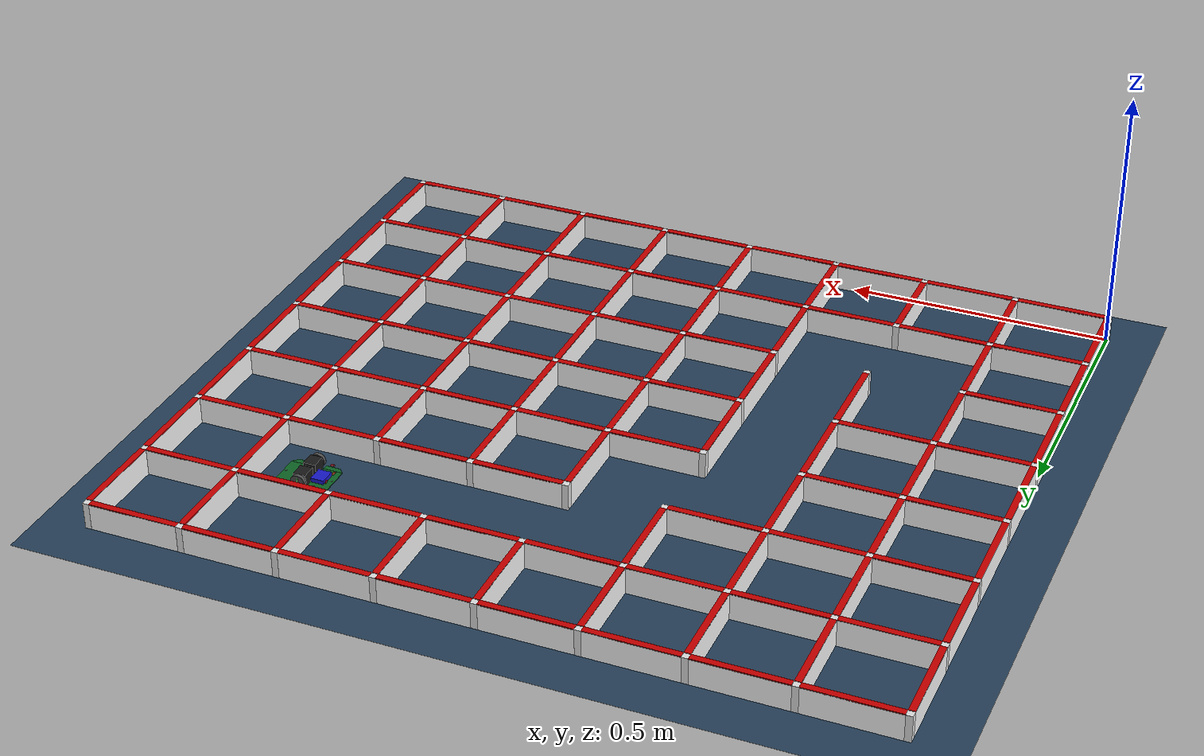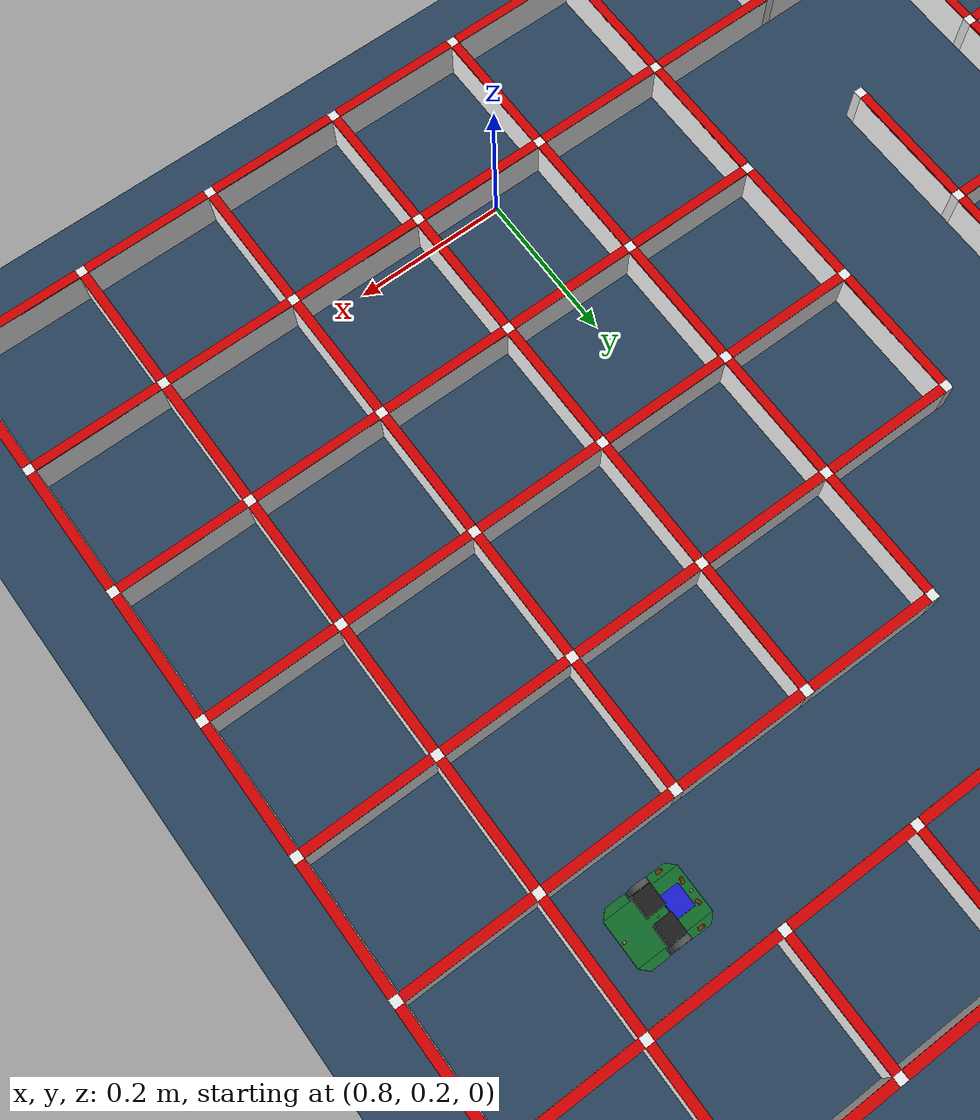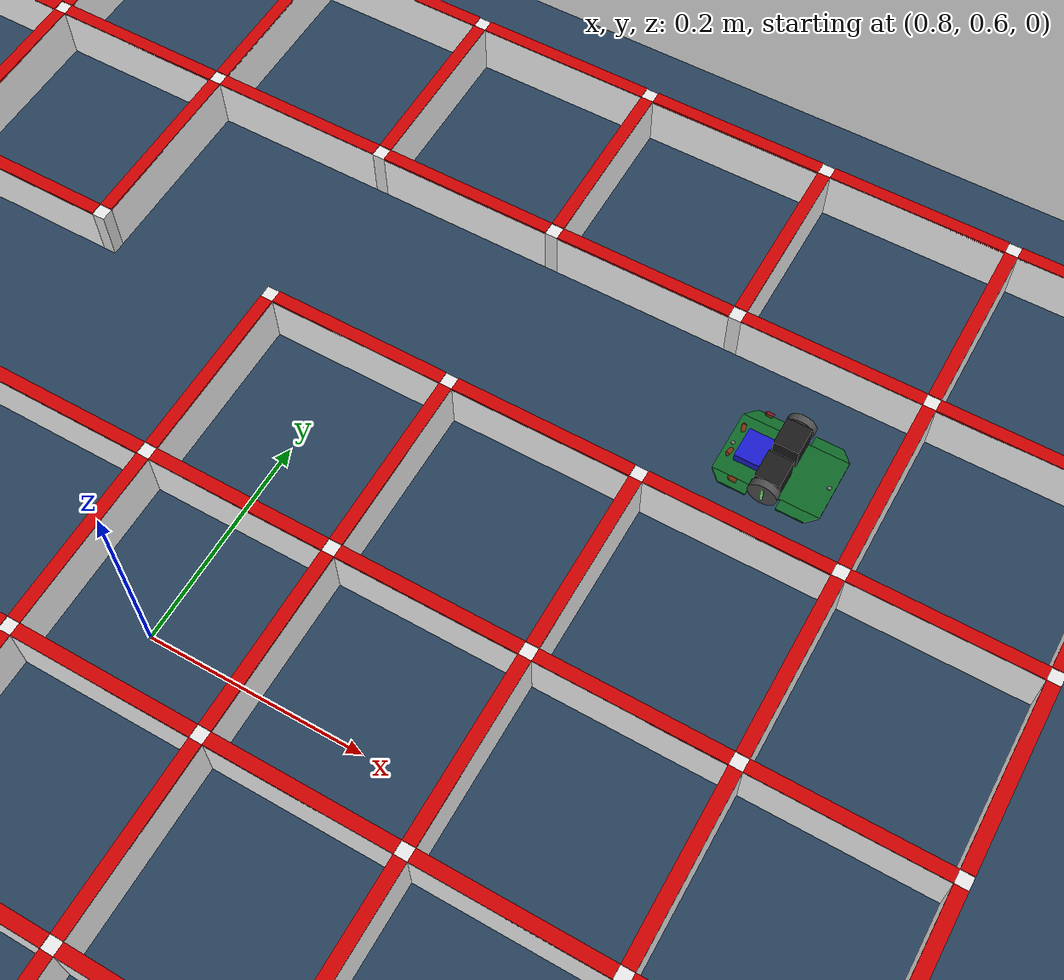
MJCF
<?xml version="1.0" ?>
<mujoco model="corridor_3001">
  <compiler angle="degree" coordinate="local" inertiafromgeom="true"/>
  <option timestep="0.0005" gravity="0 0 -9.81"/>
  <default>
    <geom solref="0.002 1"/>
  </default>
  <visual>
    <global offwidth="800" offheight="800"/>
  </visual>
  <asset>
    <texture name="tex_floor" type="2d" builtin="checker" rgb1=".2 .3 .4" rgb2=".1 .2 .3" width="512" height="512"/>
    <material name="mat_floor" texture="tex_floor" reflectance="0.0" texrepeat="50 50"/>
    <material name="mat_wall" rgba="1 1 1 1"/>
    <material name="mat_wall_top" rgba="0.8 0 0 1"/>
    <material name="mat_post" rgba="0.9 0.9 0.9 1"/>
    <material name="mat_pcb" rgba="0.1 0.1 0.1 1" specular="0.5" shininess="0.5"/>
    <material name="mat_tire" rgba="0.1 0.1 0.1 1" reflectance="0.1"/>
    <material name="mat_wheel" rgba="0.9 0.9 0.9 1"/>
    <material name="mat_motor" rgba="0.6 0.6 0.6 1" specular="1" shininess="1"/>
    <material name="mat_battery" rgba="0.1 0.1 0.8 1"/>
    <material name="mat_sensor_body" rgba="0.2 0.2 0.2 1"/>
    <material name="mat_led" rgba="0.9 0.9 0.9 0.5"/>
    <mesh name="coner" vertex="0 0 -0.0008  0.036 0 -0.0008  0.026 0.01 -0.0008  0 0.01 -0.0008  0 0 0.0008  0.036 0 0.0008  0.026 0.01 0.0008  0 0.01 0.0008"/>
  </asset>
  <worldbody>
    <geom name="floor" type="plane" material="mat_floor" pos="0.72 0.63 0" size="1.0 0.875 0.1" friction="1.0 0.005 1e-4"/>
    <light diffuse=".5 .5 .5" pos="0.72 0.63 3" dir="0 0 -1"/>
    <geom name="post_0_0" type="box" size="0.006 0.006 0.025" pos="0.0 0.0 0.025" material="mat_post" friction="0.4 0.005 1e-4"/>
    <geom name="post_0_1" type="box" size="0.006 0.006 0.025" pos="0.0 0.18 0.025" material="mat_post" friction="0.4 0.005 1e-4"/>
    <geom name="post_0_2" type="box" size="0.006 0.006 0.025" pos="0.0 0.36 0.025" material="mat_post" friction="0.4 0.005 1e-4"/>
    <geom name="post_0_3" type="box" size="0.006 0.006 0.025" pos="0.0 0.54 0.025" material="mat_post" friction="0.4 0.005 1e-4"/>
    <geom name="post_0_4" type="box" size="0.006 0.006 0.025" pos="0.0 0.72 0.025" material="mat_post" friction="0.4 0.005 1e-4"/>
    <geom name="post_0_5" type="box" size="0.006 0.006 0.025" pos="0.0 0.8999999999999999 0.025" material="mat_post" friction="0.4 0.005 1e-4"/>
    <geom name="post_0_6" type="box" size="0.006 0.006 0.025" pos="0.0 1.08 0.025" material="mat_post" friction="0.4 0.005 1e-4"/>
    <geom name="post_0_7" type="box" size="0.006 0.006 0.025" pos="0.0 1.26 0.025" material="mat_post" friction="0.4 0.005 1e-4"/>
    <geom name="post_1_0" type="box" size="0.006 0.006 0.025" pos="0.18 0.0 0.025" material="mat_post" friction="0.4 0.005 1e-4"/>
    <geom name="post_1_1" type="box" size="0.006 0.006 0.025" pos="0.18 0.18 0.025" material="mat_post" friction="0.4 0.005 1e-4"/>
    <geom name="post_1_2" type="box" size="0.006 0.006 0.025" pos="0.18 0.36 0.025" material="mat_post" friction="0.4 0.005 1e-4"/>
    <geom name="post_1_3" type="box" size="0.006 0.006 0.025" pos="0.18 0.54 0.025" material="mat_post" friction="0.4 0.005 1e-4"/>
    <geom name="post_1_4" type="box" size="0.006 0.006 0.025" pos="0.18 0.72 0.025" material="mat_post" friction="0.4 0.005 1e-4"/>
    <geom name="post_1_5" type="box" size="0.006 0.006 0.025" pos="0.18 0.8999999999999999 0.025" material="mat_post" friction="0.4 0.005 1e-4"/>
    <geom name="post_1_6" type="box" size="0.006 0.006 0.025" pos="0.18 1.08 0.025" material="mat_post" friction="0.4 0.005 1e-4"/>
    <geom name="post_1_7" type="box" size="0.006 0.006 0.025" pos="0.18 1.26 0.025" material="mat_post" friction="0.4 0.005 1e-4"/>
    <geom name="post_2_0" type="box" size="0.006 0.006 0.025" pos="0.36 0.0 0.025" material="mat_post" friction="0.4 0.005 1e-4"/>
    <geom name="post_2_1" type="box" size="0.006 0.006 0.025" pos="0.36 0.18 0.025" material="mat_post" friction="0.4 0.005 1e-4"/>
    <geom name="post_2_2" type="box" size="0.006 0.006 0.025" pos="0.36 0.36 0.025" material="mat_post" friction="0.4 0.005 1e-4"/>
    <geom name="post_2_3" type="box" size="0.006 0.006 0.025" pos="0.36 0.54 0.025" material="mat_post" friction="0.4 0.005 1e-4"/>
    <geom name="post_2_4" type="box" size="0.006 0.006 0.025" pos="0.36 0.72 0.025" material="mat_post" friction="0.4 0.005 1e-4"/>
    <geom name="post_2_5" type="box" size="0.006 0.006 0.025" pos="0.36 0.8999999999999999 0.025" material="mat_post" friction="0.4 0.005 1e-4"/>
    <geom name="post_2_6" type="box" size="0.006 0.006 0.025" pos="0.36 1.08 0.025" material="mat_post" friction="0.4 0.005 1e-4"/>
    <geom name="post_2_7" type="box" size="0.006 0.006 0.025" pos="0.36 1.26 0.025" material="mat_post" friction="0.4 0.005 1e-4"/>
    <geom name="post_3_0" type="box" size="0.006 0.006 0.025" pos="0.54 0.0 0.025" material="mat_post" friction="0.4 0.005 1e-4"/>
    <geom name="post_3_1" type="box" size="0.006 0.006 0.025" pos="0.54 0.18 0.025" material="mat_post" friction="0.4 0.005 1e-4"/>
    <geom name="post_3_2" type="box" size="0.006 0.006 0.025" pos="0.54 0.36 0.025" material="mat_post" friction="0.4 0.005 1e-4"/>
    <geom name="post_3_3" type="box" size="0.006 0.006 0.025" pos="0.54 0.54 0.025" material="mat_post" friction="0.4 0.005 1e-4"/>
    <geom name="post_3_4" type="box" size="0.006 0.006 0.025" pos="0.54 0.72 0.025" material="mat_post" friction="0.4 0.005 1e-4"/>
    <geom name="post_3_5" type="box" size="0.006 0.006 0.025" pos="0.54 0.8999999999999999 0.025" material="mat_post" friction="0.4 0.005 1e-4"/>
    <geom name="post_3_6" type="box" size="0.006 0.006 0.025" pos="0.54 1.08 0.025" material="mat_post" friction="0.4 0.005 1e-4"/>
    <geom name="post_3_7" type="box" size="0.006 0.006 0.025" pos="0.54 1.26 0.025" material="mat_post" friction="0.4 0.005 1e-4"/>
    <geom name="post_4_0" type="box" size="0.006 0.006 0.025" pos="0.72 0.0 0.025" material="mat_post" friction="0.4 0.005 1e-4"/>
    <geom name="post_4_1" type="box" size="0.006 0.006 0.025" pos="0.72 0.18 0.025" material="mat_post" friction="0.4 0.005 1e-4"/>
    <geom name="post_4_2" type="box" size="0.006 0.006 0.025" pos="0.72 0.36 0.025" material="mat_post" friction="0.4 0.005 1e-4"/>
    <geom name="post_4_3" type="box" size="0.006 0.006 0.025" pos="0.72 0.54 0.025" material="mat_post" friction="0.4 0.005 1e-4"/>
    <geom name="post_4_4" type="box" size="0.006 0.006 0.025" pos="0.72 0.72 0.025" material="mat_post" friction="0.4 0.005 1e-4"/>
    <geom name="post_4_5" type="box" size="0.006 0.006 0.025" pos="0.72 0.8999999999999999 0.025" material="mat_post" friction="0.4 0.005 1e-4"/>
    <geom name="post_4_6" type="box" size="0.006 0.006 0.025" pos="0.72 1.08 0.025" material="mat_post" friction="0.4 0.005 1e-4"/>
    <geom name="post_4_7" type="box" size="0.006 0.006 0.025" pos="0.72 1.26 0.025" material="mat_post" friction="0.4 0.005 1e-4"/>
    <geom name="post_5_0" type="box" size="0.006 0.006 0.025" pos="0.8999999999999999 0.0 0.025" material="mat_post" friction="0.4 0.005 1e-4"/>
    <geom name="post_5_1" type="box" size="0.006 0.006 0.025" pos="0.8999999999999999 0.18 0.025" material="mat_post" friction="0.4 0.005 1e-4"/>
    <geom name="post_5_2" type="box" size="0.006 0.006 0.025" pos="0.8999999999999999 0.36 0.025" material="mat_post" friction="0.4 0.005 1e-4"/>
    <geom name="post_5_3" type="box" size="0.006 0.006 0.025" pos="0.8999999999999999 0.54 0.025" material="mat_post" friction="0.4 0.005 1e-4"/>
    <geom name="post_5_4" type="box" size="0.006 0.006 0.025" pos="0.8999999999999999 0.72 0.025" material="mat_post" friction="0.4 0.005 1e-4"/>
    <geom name="post_5_5" type="box" size="0.006 0.006 0.025" pos="0.8999999999999999 0.8999999999999999 0.025" material="mat_post" friction="0.4 0.005 1e-4"/>
    <geom name="post_5_6" type="box" size="0.006 0.006 0.025" pos="0.8999999999999999 1.08 0.025" material="mat_post" friction="0.4 0.005 1e-4"/>
    <geom name="post_5_7" type="box" size="0.006 0.006 0.025" pos="0.8999999999999999 1.26 0.025" material="mat_post" friction="0.4 0.005 1e-4"/>
    <geom name="post_6_0" type="box" size="0.006 0.006 0.025" pos="1.08 0.0 0.025" material="mat_post" friction="0.4 0.005 1e-4"/>
    <geom name="post_6_1" type="box" size="0.006 0.006 0.025" pos="1.08 0.18 0.025" material="mat_post" friction="0.4 0.005 1e-4"/>
    <geom name="post_6_2" type="box" size="0.006 0.006 0.025" pos="1.08 0.36 0.025" material="mat_post" friction="0.4 0.005 1e-4"/>
    <geom name="post_6_3" type="box" size="0.006 0.006 0.025" pos="1.08 0.54 0.025" material="mat_post" friction="0.4 0.005 1e-4"/>
    <geom name="post_6_4" type="box" size="0.006 0.006 0.025" pos="1.08 0.72 0.025" material="mat_post" friction="0.4 0.005 1e-4"/>
    <geom name="post_6_5" type="box" size="0.006 0.006 0.025" pos="1.08 0.8999999999999999 0.025" material="mat_post" friction="0.4 0.005 1e-4"/>
    <geom name="post_6_6" type="box" size="0.006 0.006 0.025" pos="1.08 1.08 0.025" material="mat_post" friction="0.4 0.005 1e-4"/>
    <geom name="post_6_7" type="box" size="0.006 0.006 0.025" pos="1.08 1.26 0.025" material="mat_post" friction="0.4 0.005 1e-4"/>
    <geom name="post_7_0" type="box" size="0.006 0.006 0.025" pos="1.26 0.0 0.025" material="mat_post" friction="0.4 0.005 1e-4"/>
    <geom name="post_7_1" type="box" size="0.006 0.006 0.025" pos="1.26 0.18 0.025" material="mat_post" friction="0.4 0.005 1e-4"/>
    <geom name="post_7_2" type="box" size="0.006 0.006 0.025" pos="1.26 0.36 0.025" material="mat_post" friction="0.4 0.005 1e-4"/>
    <geom name="post_7_3" type="box" size="0.006 0.006 0.025" pos="1.26 0.54 0.025" material="mat_post" friction="0.4 0.005 1e-4"/>
    <geom name="post_7_4" type="box" size="0.006 0.006 0.025" pos="1.26 0.72 0.025" material="mat_post" friction="0.4 0.005 1e-4"/>
    <geom name="post_7_5" type="box" size="0.006 0.006 0.025" pos="1.26 0.8999999999999999 0.025" material="mat_post" friction="0.4 0.005 1e-4"/>
    <geom name="post_7_6" type="box" size="0.006 0.006 0.025" pos="1.26 1.08 0.025" material="mat_post" friction="0.4 0.005 1e-4"/>
    <geom name="post_7_7" type="box" size="0.006 0.006 0.025" pos="1.26 1.26 0.025" material="mat_post" friction="0.4 0.005 1e-4"/>
    <geom name="post_8_0" type="box" size="0.006 0.006 0.025" pos="1.44 0.0 0.025" material="mat_post" friction="0.4 0.005 1e-4"/>
    <geom name="post_8_1" type="box" size="0.006 0.006 0.025" pos="1.44 0.18 0.025" material="mat_post" friction="0.4 0.005 1e-4"/>
    <geom name="post_8_2" type="box" size="0.006 0.006 0.025" pos="1.44 0.36 0.025" material="mat_post" friction="0.4 0.005 1e-4"/>
    <geom name="post_8_3" type="box" size="0.006 0.006 0.025" pos="1.44 0.54 0.025" material="mat_post" friction="0.4 0.005 1e-4"/>
    <geom name="post_8_4" type="box" size="0.006 0.006 0.025" pos="1.44 0.72 0.025" material="mat_post" friction="0.4 0.005 1e-4"/>
    <geom name="post_8_5" type="box" size="0.006 0.006 0.025" pos="1.44 0.8999999999999999 0.025" material="mat_post" friction="0.4 0.005 1e-4"/>
    <geom name="post_8_6" type="box" size="0.006 0.006 0.025" pos="1.44 1.08 0.025" material="mat_post" friction="0.4 0.005 1e-4"/>
    <geom name="post_8_7" type="box" size="0.006 0.006 0.025" pos="1.44 1.26 0.025" material="mat_post" friction="0.4 0.005 1e-4"/>
    <geom name="v_wall_0_0" type="box" size="0.006 0.08399999999999999 0.025" pos="0.0 0.09 0.025" material="mat_wall" friction="0.4 0.005 1e-4"/>
    <geom name="v_wall_top_0_0" type="box" size="0.006 0.08399999999999999 0.001" pos="0.0 0.09 0.05" material="mat_wall_top" friction="0.4 0.005 1e-4"/>
    <geom name="v_wall_0_1" type="box" size="0.006 0.08399999999999999 0.025" pos="0.0 0.27 0.025" material="mat_wall" friction="0.4 0.005 1e-4"/>
    <geom name="v_wall_top_0_1" type="box" size="0.006 0.08399999999999999 0.001" pos="0.0 0.27 0.05" material="mat_wall_top" friction="0.4 0.005 1e-4"/>
    <geom name="v_wall_0_2" type="box" size="0.006 0.08399999999999999 0.025" pos="0.0 0.44999999999999996 0.025" material="mat_wall" friction="0.4 0.005 1e-4"/>
    <geom name="v_wall_top_0_2" type="box" size="0.006 0.08399999999999999 0.001" pos="0.0 0.44999999999999996 0.05" material="mat_wall_top" friction="0.4 0.005 1e-4"/>
    <geom name="v_wall_0_3" type="box" size="0.006 0.08399999999999999 0.025" pos="0.0 0.63 0.025" material="mat_wall" friction="0.4 0.005 1e-4"/>
    <geom name="v_wall_top_0_3" type="box" size="0.006 0.08399999999999999 0.001" pos="0.0 0.63 0.05" material="mat_wall_top" friction="0.4 0.005 1e-4"/>
    <geom name="v_wall_0_4" type="box" size="0.006 0.08399999999999999 0.025" pos="0.0 0.8099999999999999 0.025" material="mat_wall" friction="0.4 0.005 1e-4"/>
    <geom name="v_wall_top_0_4" type="box" size="0.006 0.08399999999999999 0.001" pos="0.0 0.8099999999999999 0.05" material="mat_wall_top" friction="0.4 0.005 1e-4"/>
    <geom name="v_wall_0_5" type="box" size="0.006 0.08399999999999999 0.025" pos="0.0 0.9899999999999999 0.025" material="mat_wall" friction="0.4 0.005 1e-4"/>
    <geom name="v_wall_top_0_5" type="box" size="0.006 0.08399999999999999 0.001" pos="0.0 0.9899999999999999 0.05" material="mat_wall_top" friction="0.4 0.005 1e-4"/>
    <geom name="v_wall_0_6" type="box" size="0.006 0.08399999999999999 0.025" pos="0.0 1.1700000000000002 0.025" material="mat_wall" friction="0.4 0.005 1e-4"/>
    <geom name="v_wall_top_0_6" type="box" size="0.006 0.08399999999999999 0.001" pos="0.0 1.1700000000000002 0.05" material="mat_wall_top" friction="0.4 0.005 1e-4"/>
    <geom name="v_wall_1_0" type="box" size="0.006 0.08399999999999999 0.025" pos="0.18 0.09 0.025" material="mat_wall" friction="0.4 0.005 1e-4"/>
    <geom name="v_wall_top_1_0" type="box" size="0.006 0.08399999999999999 0.001" pos="0.18 0.09 0.05" material="mat_wall_top" friction="0.4 0.005 1e-4"/>
    <geom name="v_wall_1_1" type="box" size="0.006 0.08399999999999999 0.025" pos="0.18 0.27 0.025" material="mat_wall" friction="0.4 0.005 1e-4"/>
    <geom name="v_wall_top_1_1" type="box" size="0.006 0.08399999999999999 0.001" pos="0.18 0.27 0.05" material="mat_wall_top" friction="0.4 0.005 1e-4"/>
    <geom name="v_wall_1_2" type="box" size="0.006 0.08399999999999999 0.025" pos="0.18 0.44999999999999996 0.025" material="mat_wall" friction="0.4 0.005 1e-4"/>
    <geom name="v_wall_top_1_2" type="box" size="0.006 0.08399999999999999 0.001" pos="0.18 0.44999999999999996 0.05" material="mat_wall_top" friction="0.4 0.005 1e-4"/>
    <geom name="v_wall_1_3" type="box" size="0.006 0.08399999999999999 0.025" pos="0.18 0.63 0.025" material="mat_wall" friction="0.4 0.005 1e-4"/>
    <geom name="v_wall_top_1_3" type="box" size="0.006 0.08399999999999999 0.001" pos="0.18 0.63 0.05" material="mat_wall_top" friction="0.4 0.005 1e-4"/>
    <geom name="v_wall_1_4" type="box" size="0.006 0.08399999999999999 0.025" pos="0.18 0.8099999999999999 0.025" material="mat_wall" friction="0.4 0.005 1e-4"/>
    <geom name="v_wall_top_1_4" type="box" size="0.006 0.08399999999999999 0.001" pos="0.18 0.8099999999999999 0.05" material="mat_wall_top" friction="0.4 0.005 1e-4"/>
    <geom name="v_wall_1_5" type="box" size="0.006 0.08399999999999999 0.025" pos="0.18 0.9899999999999999 0.025" material="mat_wall" friction="0.4 0.005 1e-4"/>
    <geom name="v_wall_top_1_5" type="box" size="0.006 0.08399999999999999 0.001" pos="0.18 0.9899999999999999 0.05" material="mat_wall_top" friction="0.4 0.005 1e-4"/>
    <geom name="v_wall_1_6" type="box" size="0.006 0.08399999999999999 0.025" pos="0.18 1.1700000000000002 0.025" material="mat_wall" friction="0.4 0.005 1e-4"/>
    <geom name="v_wall_top_1_6" type="box" size="0.006 0.08399999999999999 0.001" pos="0.18 1.1700000000000002 0.05" material="mat_wall_top" friction="0.4 0.005 1e-4"/>
    <geom name="v_wall_2_0" type="box" size="0.006 0.08399999999999999 0.025" pos="0.36 0.09 0.025" material="mat_wall" friction="0.4 0.005 1e-4"/>
    <geom name="v_wall_top_2_0" type="box" size="0.006 0.08399999999999999 0.001" pos="0.36 0.09 0.05" material="mat_wall_top" friction="0.4 0.005 1e-4"/>
    <geom name="v_wall_2_2" type="box" size="0.006 0.08399999999999999 0.025" pos="0.36 0.44999999999999996 0.025" material="mat_wall" friction="0.4 0.005 1e-4"/>
    <geom name="v_wall_top_2_2" type="box" size="0.006 0.08399999999999999 0.001" pos="0.36 0.44999999999999996 0.05" material="mat_wall_top" friction="0.4 0.005 1e-4"/>
    <geom name="v_wall_2_3" type="box" size="0.006 0.08399999999999999 0.025" pos="0.36 0.63 0.025" material="mat_wall" friction="0.4 0.005 1e-4"/>
    <geom name="v_wall_top_2_3" type="box" size="0.006 0.08399999999999999 0.001" pos="0.36 0.63 0.05" material="mat_wall_top" friction="0.4 0.005 1e-4"/>
    <geom name="v_wall_2_4" type="box" size="0.006 0.08399999999999999 0.025" pos="0.36 0.8099999999999999 0.025" material="mat_wall" friction="0.4 0.005 1e-4"/>
    <geom name="v_wall_top_2_4" type="box" size="0.006 0.08399999999999999 0.001" pos="0.36 0.8099999999999999 0.05" material="mat_wall_top" friction="0.4 0.005 1e-4"/>
    <geom name="v_wall_2_5" type="box" size="0.006 0.08399999999999999 0.025" pos="0.36 0.9899999999999999 0.025" material="mat_wall" friction="0.4 0.005 1e-4"/>
    <geom name="v_wall_top_2_5" type="box" size="0.006 0.08399999999999999 0.001" pos="0.36 0.9899999999999999 0.05" material="mat_wall_top" friction="0.4 0.005 1e-4"/>
    <geom name="v_wall_2_6" type="box" size="0.006 0.08399999999999999 0.025" pos="0.36 1.1700000000000002 0.025" material="mat_wall" friction="0.4 0.005 1e-4"/>
    <geom name="v_wall_top_2_6" type="box" size="0.006 0.08399999999999999 0.001" pos="0.36 1.1700000000000002 0.05" material="mat_wall_top" friction="0.4 0.005 1e-4"/>
    <geom name="v_wall_3_0" type="box" size="0.006 0.08399999999999999 0.025" pos="0.54 0.09 0.025" material="mat_wall" friction="0.4 0.005 1e-4"/>
    <geom name="v_wall_top_3_0" type="box" size="0.006 0.08399999999999999 0.001" pos="0.54 0.09 0.05" material="mat_wall_top" friction="0.4 0.005 1e-4"/>
    <geom name="v_wall_3_1" type="box" size="0.006 0.08399999999999999 0.025" pos="0.54 0.27 0.025" material="mat_wall" friction="0.4 0.005 1e-4"/>
    <geom name="v_wall_top_3_1" type="box" size="0.006 0.08399999999999999 0.001" pos="0.54 0.27 0.05" material="mat_wall_top" friction="0.4 0.005 1e-4"/>
    <geom name="v_wall_3_2" type="box" size="0.006 0.08399999999999999 0.025" pos="0.54 0.44999999999999996 0.025" material="mat_wall" friction="0.4 0.005 1e-4"/>
    <geom name="v_wall_top_3_2" type="box" size="0.006 0.08399999999999999 0.001" pos="0.54 0.44999999999999996 0.05" material="mat_wall_top" friction="0.4 0.005 1e-4"/>
    <geom name="v_wall_3_3" type="box" size="0.006 0.08399999999999999 0.025" pos="0.54 0.63 0.025" material="mat_wall" friction="0.4 0.005 1e-4"/>
    <geom name="v_wall_top_3_3" type="box" size="0.006 0.08399999999999999 0.001" pos="0.54 0.63 0.05" material="mat_wall_top" friction="0.4 0.005 1e-4"/>
    <geom name="v_wall_3_5" type="box" size="0.006 0.08399999999999999 0.025" pos="0.54 0.9899999999999999 0.025" material="mat_wall" friction="0.4 0.005 1e-4"/>
    <geom name="v_wall_top_3_5" type="box" size="0.006 0.08399999999999999 0.001" pos="0.54 0.9899999999999999 0.05" material="mat_wall_top" friction="0.4 0.005 1e-4"/>
    <geom name="v_wall_3_6" type="box" size="0.006 0.08399999999999999 0.025" pos="0.54 1.1700000000000002 0.025" material="mat_wall" friction="0.4 0.005 1e-4"/>
    <geom name="v_wall_top_3_6" type="box" size="0.006 0.08399999999999999 0.001" pos="0.54 1.1700000000000002 0.05" material="mat_wall_top" friction="0.4 0.005 1e-4"/>
    <geom name="v_wall_4_0" type="box" size="0.006 0.08399999999999999 0.025" pos="0.72 0.09 0.025" material="mat_wall" friction="0.4 0.005 1e-4"/>
    <geom name="v_wall_top_4_0" type="box" size="0.006 0.08399999999999999 0.001" pos="0.72 0.09 0.05" material="mat_wall_top" friction="0.4 0.005 1e-4"/>
    <geom name="v_wall_4_1" type="box" size="0.006 0.08399999999999999 0.025" pos="0.72 0.27 0.025" material="mat_wall" friction="0.4 0.005 1e-4"/>
    <geom name="v_wall_top_4_1" type="box" size="0.006 0.08399999999999999 0.001" pos="0.72 0.27 0.05" material="mat_wall_top" friction="0.4 0.005 1e-4"/>
    <geom name="v_wall_4_2" type="box" size="0.006 0.08399999999999999 0.025" pos="0.72 0.44999999999999996 0.025" material="mat_wall" friction="0.4 0.005 1e-4"/>
    <geom name="v_wall_top_4_2" type="box" size="0.006 0.08399999999999999 0.001" pos="0.72 0.44999999999999996 0.05" material="mat_wall_top" friction="0.4 0.005 1e-4"/>
    <geom name="v_wall_4_3" type="box" size="0.006 0.08399999999999999 0.025" pos="0.72 0.63 0.025" material="mat_wall" friction="0.4 0.005 1e-4"/>
    <geom name="v_wall_top_4_3" type="box" size="0.006 0.08399999999999999 0.001" pos="0.72 0.63 0.05" material="mat_wall_top" friction="0.4 0.005 1e-4"/>
    <geom name="v_wall_4_4" type="box" size="0.006 0.08399999999999999 0.025" pos="0.72 0.8099999999999999 0.025" material="mat_wall" friction="0.4 0.005 1e-4"/>
    <geom name="v_wall_top_4_4" type="box" size="0.006 0.08399999999999999 0.001" pos="0.72 0.8099999999999999 0.05" material="mat_wall_top" friction="0.4 0.005 1e-4"/>
    <geom name="v_wall_4_6" type="box" size="0.006 0.08399999999999999 0.025" pos="0.72 1.1700000000000002 0.025" material="mat_wall" friction="0.4 0.005 1e-4"/>
    <geom name="v_wall_top_4_6" type="box" size="0.006 0.08399999999999999 0.001" pos="0.72 1.1700000000000002 0.05" material="mat_wall_top" friction="0.4 0.005 1e-4"/>
    <geom name="v_wall_5_0" type="box" size="0.006 0.08399999999999999 0.025" pos="0.8999999999999999 0.09 0.025" material="mat_wall" friction="0.4 0.005 1e-4"/>
    <geom name="v_wall_top_5_0" type="box" size="0.006 0.08399999999999999 0.001" pos="0.8999999999999999 0.09 0.05" material="mat_wall_top" friction="0.4 0.005 1e-4"/>
    <geom name="v_wall_5_1" type="box" size="0.006 0.08399999999999999 0.025" pos="0.8999999999999999 0.27 0.025" material="mat_wall" friction="0.4 0.005 1e-4"/>
    <geom name="v_wall_top_5_1" type="box" size="0.006 0.08399999999999999 0.001" pos="0.8999999999999999 0.27 0.05" material="mat_wall_top" friction="0.4 0.005 1e-4"/>
    <geom name="v_wall_5_2" type="box" size="0.006 0.08399999999999999 0.025" pos="0.8999999999999999 0.44999999999999996 0.025" material="mat_wall" friction="0.4 0.005 1e-4"/>
    <geom name="v_wall_top_5_2" type="box" size="0.006 0.08399999999999999 0.001" pos="0.8999999999999999 0.44999999999999996 0.05" material="mat_wall_top" friction="0.4 0.005 1e-4"/>
    <geom name="v_wall_5_3" type="box" size="0.006 0.08399999999999999 0.025" pos="0.8999999999999999 0.63 0.025" material="mat_wall" friction="0.4 0.005 1e-4"/>
    <geom name="v_wall_top_5_3" type="box" size="0.006 0.08399999999999999 0.001" pos="0.8999999999999999 0.63 0.05" material="mat_wall_top" friction="0.4 0.005 1e-4"/>
    <geom name="v_wall_5_4" type="box" size="0.006 0.08399999999999999 0.025" pos="0.8999999999999999 0.8099999999999999 0.025" material="mat_wall" friction="0.4 0.005 1e-4"/>
    <geom name="v_wall_top_5_4" type="box" size="0.006 0.08399999999999999 0.001" pos="0.8999999999999999 0.8099999999999999 0.05" material="mat_wall_top" friction="0.4 0.005 1e-4"/>
    <geom name="v_wall_5_6" type="box" size="0.006 0.08399999999999999 0.025" pos="0.8999999999999999 1.1700000000000002 0.025" material="mat_wall" friction="0.4 0.005 1e-4"/>
    <geom name="v_wall_top_5_6" type="box" size="0.006 0.08399999999999999 0.001" pos="0.8999999999999999 1.1700000000000002 0.05" material="mat_wall_top" friction="0.4 0.005 1e-4"/>
    <geom name="v_wall_6_0" type="box" size="0.006 0.08399999999999999 0.025" pos="1.08 0.09 0.025" material="mat_wall" friction="0.4 0.005 1e-4"/>
    <geom name="v_wall_top_6_0" type="box" size="0.006 0.08399999999999999 0.001" pos="1.08 0.09 0.05" material="mat_wall_top" friction="0.4 0.005 1e-4"/>
    <geom name="v_wall_6_1" type="box" size="0.006 0.08399999999999999 0.025" pos="1.08 0.27 0.025" material="mat_wall" friction="0.4 0.005 1e-4"/>
    <geom name="v_wall_top_6_1" type="box" size="0.006 0.08399999999999999 0.001" pos="1.08 0.27 0.05" material="mat_wall_top" friction="0.4 0.005 1e-4"/>
    <geom name="v_wall_6_2" type="box" size="0.006 0.08399999999999999 0.025" pos="1.08 0.44999999999999996 0.025" material="mat_wall" friction="0.4 0.005 1e-4"/>
    <geom name="v_wall_top_6_2" type="box" size="0.006 0.08399999999999999 0.001" pos="1.08 0.44999999999999996 0.05" material="mat_wall_top" friction="0.4 0.005 1e-4"/>
    <geom name="v_wall_6_3" type="box" size="0.006 0.08399999999999999 0.025" pos="1.08 0.63 0.025" material="mat_wall" friction="0.4 0.005 1e-4"/>
    <geom name="v_wall_top_6_3" type="box" size="0.006 0.08399999999999999 0.001" pos="1.08 0.63 0.05" material="mat_wall_top" friction="0.4 0.005 1e-4"/>
    <geom name="v_wall_6_4" type="box" size="0.006 0.08399999999999999 0.025" pos="1.08 0.8099999999999999 0.025" material="mat_wall" friction="0.4 0.005 1e-4"/>
    <geom name="v_wall_top_6_4" type="box" size="0.006 0.08399999999999999 0.001" pos="1.08 0.8099999999999999 0.05" material="mat_wall_top" friction="0.4 0.005 1e-4"/>
    <geom name="v_wall_6_6" type="box" size="0.006 0.08399999999999999 0.025" pos="1.08 1.1700000000000002 0.025" material="mat_wall" friction="0.4 0.005 1e-4"/>
    <geom name="v_wall_top_6_6" type="box" size="0.006 0.08399999999999999 0.001" pos="1.08 1.1700000000000002 0.05" material="mat_wall_top" friction="0.4 0.005 1e-4"/>
    <geom name="v_wall_7_0" type="box" size="0.006 0.08399999999999999 0.025" pos="1.26 0.09 0.025" material="mat_wall" friction="0.4 0.005 1e-4"/>
    <geom name="v_wall_top_7_0" type="box" size="0.006 0.08399999999999999 0.001" pos="1.26 0.09 0.05" material="mat_wall_top" friction="0.4 0.005 1e-4"/>
    <geom name="v_wall_7_1" type="box" size="0.006 0.08399999999999999 0.025" pos="1.26 0.27 0.025" material="mat_wall" friction="0.4 0.005 1e-4"/>
    <geom name="v_wall_top_7_1" type="box" size="0.006 0.08399999999999999 0.001" pos="1.26 0.27 0.05" material="mat_wall_top" friction="0.4 0.005 1e-4"/>
    <geom name="v_wall_7_2" type="box" size="0.006 0.08399999999999999 0.025" pos="1.26 0.44999999999999996 0.025" material="mat_wall" friction="0.4 0.005 1e-4"/>
    <geom name="v_wall_top_7_2" type="box" size="0.006 0.08399999999999999 0.001" pos="1.26 0.44999999999999996 0.05" material="mat_wall_top" friction="0.4 0.005 1e-4"/>
    <geom name="v_wall_7_3" type="box" size="0.006 0.08399999999999999 0.025" pos="1.26 0.63 0.025" material="mat_wall" friction="0.4 0.005 1e-4"/>
    <geom name="v_wall_top_7_3" type="box" size="0.006 0.08399999999999999 0.001" pos="1.26 0.63 0.05" material="mat_wall_top" friction="0.4 0.005 1e-4"/>
    <geom name="v_wall_7_4" type="box" size="0.006 0.08399999999999999 0.025" pos="1.26 0.8099999999999999 0.025" material="mat_wall" friction="0.4 0.005 1e-4"/>
    <geom name="v_wall_top_7_4" type="box" size="0.006 0.08399999999999999 0.001" pos="1.26 0.8099999999999999 0.05" material="mat_wall_top" friction="0.4 0.005 1e-4"/>
    <geom name="v_wall_7_5" type="box" size="0.006 0.08399999999999999 0.025" pos="1.26 0.9899999999999999 0.025" material="mat_wall" friction="0.4 0.005 1e-4"/>
    <geom name="v_wall_top_7_5" type="box" size="0.006 0.08399999999999999 0.001" pos="1.26 0.9899999999999999 0.05" material="mat_wall_top" friction="0.4 0.005 1e-4"/>
    <geom name="v_wall_7_6" type="box" size="0.006 0.08399999999999999 0.025" pos="1.26 1.1700000000000002 0.025" material="mat_wall" friction="0.4 0.005 1e-4"/>
    <geom name="v_wall_top_7_6" type="box" size="0.006 0.08399999999999999 0.001" pos="1.26 1.1700000000000002 0.05" material="mat_wall_top" friction="0.4 0.005 1e-4"/>
    <geom name="v_wall_8_0" type="box" size="0.006 0.08399999999999999 0.025" pos="1.44 0.09 0.025" material="mat_wall" friction="0.4 0.005 1e-4"/>
    <geom name="v_wall_top_8_0" type="box" size="0.006 0.08399999999999999 0.001" pos="1.44 0.09 0.05" material="mat_wall_top" friction="0.4 0.005 1e-4"/>
    <geom name="v_wall_8_1" type="box" size="0.006 0.08399999999999999 0.025" pos="1.44 0.27 0.025" material="mat_wall" friction="0.4 0.005 1e-4"/>
    <geom name="v_wall_top_8_1" type="box" size="0.006 0.08399999999999999 0.001" pos="1.44 0.27 0.05" material="mat_wall_top" friction="0.4 0.005 1e-4"/>
    <geom name="v_wall_8_2" type="box" size="0.006 0.08399999999999999 0.025" pos="1.44 0.44999999999999996 0.025" material="mat_wall" friction="0.4 0.005 1e-4"/>
    <geom name="v_wall_top_8_2" type="box" size="0.006 0.08399999999999999 0.001" pos="1.44 0.44999999999999996 0.05" material="mat_wall_top" friction="0.4 0.005 1e-4"/>
    <geom name="v_wall_8_3" type="box" size="0.006 0.08399999999999999 0.025" pos="1.44 0.63 0.025" material="mat_wall" friction="0.4 0.005 1e-4"/>
    <geom name="v_wall_top_8_3" type="box" size="0.006 0.08399999999999999 0.001" pos="1.44 0.63 0.05" material="mat_wall_top" friction="0.4 0.005 1e-4"/>
    <geom name="v_wall_8_4" type="box" size="0.006 0.08399999999999999 0.025" pos="1.44 0.8099999999999999 0.025" material="mat_wall" friction="0.4 0.005 1e-4"/>
    <geom name="v_wall_top_8_4" type="box" size="0.006 0.08399999999999999 0.001" pos="1.44 0.8099999999999999 0.05" material="mat_wall_top" friction="0.4 0.005 1e-4"/>
    <geom name="v_wall_8_5" type="box" size="0.006 0.08399999999999999 0.025" pos="1.44 0.9899999999999999 0.025" material="mat_wall" friction="0.4 0.005 1e-4"/>
    <geom name="v_wall_top_8_5" type="box" size="0.006 0.08399999999999999 0.001" pos="1.44 0.9899999999999999 0.05" material="mat_wall_top" friction="0.4 0.005 1e-4"/>
    <geom name="v_wall_8_6" type="box" size="0.006 0.08399999999999999 0.025" pos="1.44 1.1700000000000002 0.025" material="mat_wall" friction="0.4 0.005 1e-4"/>
    <geom name="v_wall_top_8_6" type="box" size="0.006 0.08399999999999999 0.001" pos="1.44 1.1700000000000002 0.05" material="mat_wall_top" friction="0.4 0.005 1e-4"/>
    <geom name="h_wall_0_0" type="box" size="0.08399999999999999 0.006 0.025" pos="0.09 0.0 0.025" material="mat_wall" friction="0.4 0.005 1e-4"/>
    <geom name="h_wall_top_0_0" type="box" size="0.08399999999999999 0.006 0.001" pos="0.09 0.0 0.05" material="mat_wall_top" friction="0.4 0.005 1e-4"/>
    <geom name="h_wall_0_1" type="box" size="0.08399999999999999 0.006 0.025" pos="0.09 0.18 0.025" material="mat_wall" friction="0.4 0.005 1e-4"/>
    <geom name="h_wall_top_0_1" type="box" size="0.08399999999999999 0.006 0.001" pos="0.09 0.18 0.05" material="mat_wall_top" friction="0.4 0.005 1e-4"/>
    <geom name="h_wall_0_2" type="box" size="0.08399999999999999 0.006 0.025" pos="0.09 0.36 0.025" material="mat_wall" friction="0.4 0.005 1e-4"/>
    <geom name="h_wall_top_0_2" type="box" size="0.08399999999999999 0.006 0.001" pos="0.09 0.36 0.05" material="mat_wall_top" friction="0.4 0.005 1e-4"/>
    <geom name="h_wall_0_3" type="box" size="0.08399999999999999 0.006 0.025" pos="0.09 0.54 0.025" material="mat_wall" friction="0.4 0.005 1e-4"/>
    <geom name="h_wall_top_0_3" type="box" size="0.08399999999999999 0.006 0.001" pos="0.09 0.54 0.05" material="mat_wall_top" friction="0.4 0.005 1e-4"/>
    <geom name="h_wall_0_4" type="box" size="0.08399999999999999 0.006 0.025" pos="0.09 0.72 0.025" material="mat_wall" friction="0.4 0.005 1e-4"/>
    <geom name="h_wall_top_0_4" type="box" size="0.08399999999999999 0.006 0.001" pos="0.09 0.72 0.05" material="mat_wall_top" friction="0.4 0.005 1e-4"/>
    <geom name="h_wall_0_5" type="box" size="0.08399999999999999 0.006 0.025" pos="0.09 0.8999999999999999 0.025" material="mat_wall" friction="0.4 0.005 1e-4"/>
    <geom name="h_wall_top_0_5" type="box" size="0.08399999999999999 0.006 0.001" pos="0.09 0.8999999999999999 0.05" material="mat_wall_top" friction="0.4 0.005 1e-4"/>
    <geom name="h_wall_0_6" type="box" size="0.08399999999999999 0.006 0.025" pos="0.09 1.08 0.025" material="mat_wall" friction="0.4 0.005 1e-4"/>
    <geom name="h_wall_top_0_6" type="box" size="0.08399999999999999 0.006 0.001" pos="0.09 1.08 0.05" material="mat_wall_top" friction="0.4 0.005 1e-4"/>
    <geom name="h_wall_0_7" type="box" size="0.08399999999999999 0.006 0.025" pos="0.09 1.26 0.025" material="mat_wall" friction="0.4 0.005 1e-4"/>
    <geom name="h_wall_top_0_7" type="box" size="0.08399999999999999 0.006 0.001" pos="0.09 1.26 0.05" material="mat_wall_top" friction="0.4 0.005 1e-4"/>
    <geom name="h_wall_1_0" type="box" size="0.08399999999999999 0.006 0.025" pos="0.27 0.0 0.025" material="mat_wall" friction="0.4 0.005 1e-4"/>
    <geom name="h_wall_top_1_0" type="box" size="0.08399999999999999 0.006 0.001" pos="0.27 0.0 0.05" material="mat_wall_top" friction="0.4 0.005 1e-4"/>
    <geom name="h_wall_1_1" type="box" size="0.08399999999999999 0.006 0.025" pos="0.27 0.18 0.025" material="mat_wall" friction="0.4 0.005 1e-4"/>
    <geom name="h_wall_top_1_1" type="box" size="0.08399999999999999 0.006 0.001" pos="0.27 0.18 0.05" material="mat_wall_top" friction="0.4 0.005 1e-4"/>
    <geom name="h_wall_1_3" type="box" size="0.08399999999999999 0.006 0.025" pos="0.27 0.54 0.025" material="mat_wall" friction="0.4 0.005 1e-4"/>
    <geom name="h_wall_top_1_3" type="box" size="0.08399999999999999 0.006 0.001" pos="0.27 0.54 0.05" material="mat_wall_top" friction="0.4 0.005 1e-4"/>
    <geom name="h_wall_1_4" type="box" size="0.08399999999999999 0.006 0.025" pos="0.27 0.72 0.025" material="mat_wall" friction="0.4 0.005 1e-4"/>
    <geom name="h_wall_top_1_4" type="box" size="0.08399999999999999 0.006 0.001" pos="0.27 0.72 0.05" material="mat_wall_top" friction="0.4 0.005 1e-4"/>
    <geom name="h_wall_1_5" type="box" size="0.08399999999999999 0.006 0.025" pos="0.27 0.8999999999999999 0.025" material="mat_wall" friction="0.4 0.005 1e-4"/>
    <geom name="h_wall_top_1_5" type="box" size="0.08399999999999999 0.006 0.001" pos="0.27 0.8999999999999999 0.05" material="mat_wall_top" friction="0.4 0.005 1e-4"/>
    <geom name="h_wall_1_6" type="box" size="0.08399999999999999 0.006 0.025" pos="0.27 1.08 0.025" material="mat_wall" friction="0.4 0.005 1e-4"/>
    <geom name="h_wall_top_1_6" type="box" size="0.08399999999999999 0.006 0.001" pos="0.27 1.08 0.05" material="mat_wall_top" friction="0.4 0.005 1e-4"/>
    <geom name="h_wall_1_7" type="box" size="0.08399999999999999 0.006 0.025" pos="0.27 1.26 0.025" material="mat_wall" friction="0.4 0.005 1e-4"/>
    <geom name="h_wall_top_1_7" type="box" size="0.08399999999999999 0.006 0.001" pos="0.27 1.26 0.05" material="mat_wall_top" friction="0.4 0.005 1e-4"/>
    <geom name="h_wall_2_0" type="box" size="0.08399999999999999 0.006 0.025" pos="0.44999999999999996 0.0 0.025" material="mat_wall" friction="0.4 0.005 1e-4"/>
    <geom name="h_wall_top_2_0" type="box" size="0.08399999999999999 0.006 0.001" pos="0.44999999999999996 0.0 0.05" material="mat_wall_top" friction="0.4 0.005 1e-4"/>
    <geom name="h_wall_2_1" type="box" size="0.08399999999999999 0.006 0.025" pos="0.44999999999999996 0.18 0.025" material="mat_wall" friction="0.4 0.005 1e-4"/>
    <geom name="h_wall_top_2_1" type="box" size="0.08399999999999999 0.006 0.001" pos="0.44999999999999996 0.18 0.05" material="mat_wall_top" friction="0.4 0.005 1e-4"/>
    <geom name="h_wall_2_5" type="box" size="0.08399999999999999 0.006 0.025" pos="0.44999999999999996 0.8999999999999999 0.025" material="mat_wall" friction="0.4 0.005 1e-4"/>
    <geom name="h_wall_top_2_5" type="box" size="0.08399999999999999 0.006 0.001" pos="0.44999999999999996 0.8999999999999999 0.05" material="mat_wall_top" friction="0.4 0.005 1e-4"/>
    <geom name="h_wall_2_6" type="box" size="0.08399999999999999 0.006 0.025" pos="0.44999999999999996 1.08 0.025" material="mat_wall" friction="0.4 0.005 1e-4"/>
    <geom name="h_wall_top_2_6" type="box" size="0.08399999999999999 0.006 0.001" pos="0.44999999999999996 1.08 0.05" material="mat_wall_top" friction="0.4 0.005 1e-4"/>
    <geom name="h_wall_2_7" type="box" size="0.08399999999999999 0.006 0.025" pos="0.44999999999999996 1.26 0.025" material="mat_wall" friction="0.4 0.005 1e-4"/>
    <geom name="h_wall_top_2_7" type="box" size="0.08399999999999999 0.006 0.001" pos="0.44999999999999996 1.26 0.05" material="mat_wall_top" friction="0.4 0.005 1e-4"/>
    <geom name="h_wall_3_0" type="box" size="0.08399999999999999 0.006 0.025" pos="0.63 0.0 0.025" material="mat_wall" friction="0.4 0.005 1e-4"/>
    <geom name="h_wall_top_3_0" type="box" size="0.08399999999999999 0.006 0.001" pos="0.63 0.0 0.05" material="mat_wall_top" friction="0.4 0.005 1e-4"/>
    <geom name="h_wall_3_1" type="box" size="0.08399999999999999 0.006 0.025" pos="0.63 0.18 0.025" material="mat_wall" friction="0.4 0.005 1e-4"/>
    <geom name="h_wall_top_3_1" type="box" size="0.08399999999999999 0.006 0.001" pos="0.63 0.18 0.05" material="mat_wall_top" friction="0.4 0.005 1e-4"/>
    <geom name="h_wall_3_2" type="box" size="0.08399999999999999 0.006 0.025" pos="0.63 0.36 0.025" material="mat_wall" friction="0.4 0.005 1e-4"/>
    <geom name="h_wall_top_3_2" type="box" size="0.08399999999999999 0.006 0.001" pos="0.63 0.36 0.05" material="mat_wall_top" friction="0.4 0.005 1e-4"/>
    <geom name="h_wall_3_3" type="box" size="0.08399999999999999 0.006 0.025" pos="0.63 0.54 0.025" material="mat_wall" friction="0.4 0.005 1e-4"/>
    <geom name="h_wall_top_3_3" type="box" size="0.08399999999999999 0.006 0.001" pos="0.63 0.54 0.05" material="mat_wall_top" friction="0.4 0.005 1e-4"/>
    <geom name="h_wall_3_4" type="box" size="0.08399999999999999 0.006 0.025" pos="0.63 0.72 0.025" material="mat_wall" friction="0.4 0.005 1e-4"/>
    <geom name="h_wall_top_3_4" type="box" size="0.08399999999999999 0.006 0.001" pos="0.63 0.72 0.05" material="mat_wall_top" friction="0.4 0.005 1e-4"/>
    <geom name="h_wall_3_6" type="box" size="0.08399999999999999 0.006 0.025" pos="0.63 1.08 0.025" material="mat_wall" friction="0.4 0.005 1e-4"/>
    <geom name="h_wall_top_3_6" type="box" size="0.08399999999999999 0.006 0.001" pos="0.63 1.08 0.05" material="mat_wall_top" friction="0.4 0.005 1e-4"/>
    <geom name="h_wall_3_7" type="box" size="0.08399999999999999 0.006 0.025" pos="0.63 1.26 0.025" material="mat_wall" friction="0.4 0.005 1e-4"/>
    <geom name="h_wall_top_3_7" type="box" size="0.08399999999999999 0.006 0.001" pos="0.63 1.26 0.05" material="mat_wall_top" friction="0.4 0.005 1e-4"/>
    <geom name="h_wall_4_0" type="box" size="0.08399999999999999 0.006 0.025" pos="0.8099999999999999 0.0 0.025" material="mat_wall" friction="0.4 0.005 1e-4"/>
    <geom name="h_wall_top_4_0" type="box" size="0.08399999999999999 0.006 0.001" pos="0.8099999999999999 0.0 0.05" material="mat_wall_top" friction="0.4 0.005 1e-4"/>
    <geom name="h_wall_4_1" type="box" size="0.08399999999999999 0.006 0.025" pos="0.8099999999999999 0.18 0.025" material="mat_wall" friction="0.4 0.005 1e-4"/>
    <geom name="h_wall_top_4_1" type="box" size="0.08399999999999999 0.006 0.001" pos="0.8099999999999999 0.18 0.05" material="mat_wall_top" friction="0.4 0.005 1e-4"/>
    <geom name="h_wall_4_2" type="box" size="0.08399999999999999 0.006 0.025" pos="0.8099999999999999 0.36 0.025" material="mat_wall" friction="0.4 0.005 1e-4"/>
    <geom name="h_wall_top_4_2" type="box" size="0.08399999999999999 0.006 0.001" pos="0.8099999999999999 0.36 0.05" material="mat_wall_top" friction="0.4 0.005 1e-4"/>
    <geom name="h_wall_4_3" type="box" size="0.08399999999999999 0.006 0.025" pos="0.8099999999999999 0.54 0.025" material="mat_wall" friction="0.4 0.005 1e-4"/>
    <geom name="h_wall_top_4_3" type="box" size="0.08399999999999999 0.006 0.001" pos="0.8099999999999999 0.54 0.05" material="mat_wall_top" friction="0.4 0.005 1e-4"/>
    <geom name="h_wall_4_4" type="box" size="0.08399999999999999 0.006 0.025" pos="0.8099999999999999 0.72 0.025" material="mat_wall" friction="0.4 0.005 1e-4"/>
    <geom name="h_wall_top_4_4" type="box" size="0.08399999999999999 0.006 0.001" pos="0.8099999999999999 0.72 0.05" material="mat_wall_top" friction="0.4 0.005 1e-4"/>
    <geom name="h_wall_4_5" type="box" size="0.08399999999999999 0.006 0.025" pos="0.8099999999999999 0.8999999999999999 0.025" material="mat_wall" friction="0.4 0.005 1e-4"/>
    <geom name="h_wall_top_4_5" type="box" size="0.08399999999999999 0.006 0.001" pos="0.8099999999999999 0.8999999999999999 0.05" material="mat_wall_top" friction="0.4 0.005 1e-4"/>
    <geom name="h_wall_4_6" type="box" size="0.08399999999999999 0.006 0.025" pos="0.8099999999999999 1.08 0.025" material="mat_wall" friction="0.4 0.005 1e-4"/>
    <geom name="h_wall_top_4_6" type="box" size="0.08399999999999999 0.006 0.001" pos="0.8099999999999999 1.08 0.05" material="mat_wall_top" friction="0.4 0.005 1e-4"/>
    <geom name="h_wall_4_7" type="box" size="0.08399999999999999 0.006 0.025" pos="0.8099999999999999 1.26 0.025" material="mat_wall" friction="0.4 0.005 1e-4"/>
    <geom name="h_wall_top_4_7" type="box" size="0.08399999999999999 0.006 0.001" pos="0.8099999999999999 1.26 0.05" material="mat_wall_top" friction="0.4 0.005 1e-4"/>
    <geom name="h_wall_5_0" type="box" size="0.08399999999999999 0.006 0.025" pos="0.9899999999999999 0.0 0.025" material="mat_wall" friction="0.4 0.005 1e-4"/>
    <geom name="h_wall_top_5_0" type="box" size="0.08399999999999999 0.006 0.001" pos="0.9899999999999999 0.0 0.05" material="mat_wall_top" friction="0.4 0.005 1e-4"/>
    <geom name="h_wall_5_1" type="box" size="0.08399999999999999 0.006 0.025" pos="0.9899999999999999 0.18 0.025" material="mat_wall" friction="0.4 0.005 1e-4"/>
    <geom name="h_wall_top_5_1" type="box" size="0.08399999999999999 0.006 0.001" pos="0.9899999999999999 0.18 0.05" material="mat_wall_top" friction="0.4 0.005 1e-4"/>
    <geom name="h_wall_5_2" type="box" size="0.08399999999999999 0.006 0.025" pos="0.9899999999999999 0.36 0.025" material="mat_wall" friction="0.4 0.005 1e-4"/>
    <geom name="h_wall_top_5_2" type="box" size="0.08399999999999999 0.006 0.001" pos="0.9899999999999999 0.36 0.05" material="mat_wall_top" friction="0.4 0.005 1e-4"/>
    <geom name="h_wall_5_3" type="box" size="0.08399999999999999 0.006 0.025" pos="0.9899999999999999 0.54 0.025" material="mat_wall" friction="0.4 0.005 1e-4"/>
    <geom name="h_wall_top_5_3" type="box" size="0.08399999999999999 0.006 0.001" pos="0.9899999999999999 0.54 0.05" material="mat_wall_top" friction="0.4 0.005 1e-4"/>
    <geom name="h_wall_5_4" type="box" size="0.08399999999999999 0.006 0.025" pos="0.9899999999999999 0.72 0.025" material="mat_wall" friction="0.4 0.005 1e-4"/>
    <geom name="h_wall_top_5_4" type="box" size="0.08399999999999999 0.006 0.001" pos="0.9899999999999999 0.72 0.05" material="mat_wall_top" friction="0.4 0.005 1e-4"/>
    <geom name="h_wall_5_5" type="box" size="0.08399999999999999 0.006 0.025" pos="0.9899999999999999 0.8999999999999999 0.025" material="mat_wall" friction="0.4 0.005 1e-4"/>
    <geom name="h_wall_top_5_5" type="box" size="0.08399999999999999 0.006 0.001" pos="0.9899999999999999 0.8999999999999999 0.05" material="mat_wall_top" friction="0.4 0.005 1e-4"/>
    <geom name="h_wall_5_6" type="box" size="0.08399999999999999 0.006 0.025" pos="0.9899999999999999 1.08 0.025" material="mat_wall" friction="0.4 0.005 1e-4"/>
    <geom name="h_wall_top_5_6" type="box" size="0.08399999999999999 0.006 0.001" pos="0.9899999999999999 1.08 0.05" material="mat_wall_top" friction="0.4 0.005 1e-4"/>
    <geom name="h_wall_5_7" type="box" size="0.08399999999999999 0.006 0.025" pos="0.9899999999999999 1.26 0.025" material="mat_wall" friction="0.4 0.005 1e-4"/>
    <geom name="h_wall_top_5_7" type="box" size="0.08399999999999999 0.006 0.001" pos="0.9899999999999999 1.26 0.05" material="mat_wall_top" friction="0.4 0.005 1e-4"/>
    <geom name="h_wall_6_0" type="box" size="0.08399999999999999 0.006 0.025" pos="1.1700000000000002 0.0 0.025" material="mat_wall" friction="0.4 0.005 1e-4"/>
    <geom name="h_wall_top_6_0" type="box" size="0.08399999999999999 0.006 0.001" pos="1.1700000000000002 0.0 0.05" material="mat_wall_top" friction="0.4 0.005 1e-4"/>
    <geom name="h_wall_6_1" type="box" size="0.08399999999999999 0.006 0.025" pos="1.1700000000000002 0.18 0.025" material="mat_wall" friction="0.4 0.005 1e-4"/>
    <geom name="h_wall_top_6_1" type="box" size="0.08399999999999999 0.006 0.001" pos="1.1700000000000002 0.18 0.05" material="mat_wall_top" friction="0.4 0.005 1e-4"/>
    <geom name="h_wall_6_2" type="box" size="0.08399999999999999 0.006 0.025" pos="1.1700000000000002 0.36 0.025" material="mat_wall" friction="0.4 0.005 1e-4"/>
    <geom name="h_wall_top_6_2" type="box" size="0.08399999999999999 0.006 0.001" pos="1.1700000000000002 0.36 0.05" material="mat_wall_top" friction="0.4 0.005 1e-4"/>
    <geom name="h_wall_6_3" type="box" size="0.08399999999999999 0.006 0.025" pos="1.1700000000000002 0.54 0.025" material="mat_wall" friction="0.4 0.005 1e-4"/>
    <geom name="h_wall_top_6_3" type="box" size="0.08399999999999999 0.006 0.001" pos="1.1700000000000002 0.54 0.05" material="mat_wall_top" friction="0.4 0.005 1e-4"/>
    <geom name="h_wall_6_4" type="box" size="0.08399999999999999 0.006 0.025" pos="1.1700000000000002 0.72 0.025" material="mat_wall" friction="0.4 0.005 1e-4"/>
    <geom name="h_wall_top_6_4" type="box" size="0.08399999999999999 0.006 0.001" pos="1.1700000000000002 0.72 0.05" material="mat_wall_top" friction="0.4 0.005 1e-4"/>
    <geom name="h_wall_6_5" type="box" size="0.08399999999999999 0.006 0.025" pos="1.1700000000000002 0.8999999999999999 0.025" material="mat_wall" friction="0.4 0.005 1e-4"/>
    <geom name="h_wall_top_6_5" type="box" size="0.08399999999999999 0.006 0.001" pos="1.1700000000000002 0.8999999999999999 0.05" material="mat_wall_top" friction="0.4 0.005 1e-4"/>
    <geom name="h_wall_6_6" type="box" size="0.08399999999999999 0.006 0.025" pos="1.1700000000000002 1.08 0.025" material="mat_wall" friction="0.4 0.005 1e-4"/>
    <geom name="h_wall_top_6_6" type="box" size="0.08399999999999999 0.006 0.001" pos="1.1700000000000002 1.08 0.05" material="mat_wall_top" friction="0.4 0.005 1e-4"/>
    <geom name="h_wall_6_7" type="box" size="0.08399999999999999 0.006 0.025" pos="1.1700000000000002 1.26 0.025" material="mat_wall" friction="0.4 0.005 1e-4"/>
    <geom name="h_wall_top_6_7" type="box" size="0.08399999999999999 0.006 0.001" pos="1.1700000000000002 1.26 0.05" material="mat_wall_top" friction="0.4 0.005 1e-4"/>
    <geom name="h_wall_7_0" type="box" size="0.08399999999999999 0.006 0.025" pos="1.35 0.0 0.025" material="mat_wall" friction="0.4 0.005 1e-4"/>
    <geom name="h_wall_top_7_0" type="box" size="0.08399999999999999 0.006 0.001" pos="1.35 0.0 0.05" material="mat_wall_top" friction="0.4 0.005 1e-4"/>
    <geom name="h_wall_7_1" type="box" size="0.08399999999999999 0.006 0.025" pos="1.35 0.18 0.025" material="mat_wall" friction="0.4 0.005 1e-4"/>
    <geom name="h_wall_top_7_1" type="box" size="0.08399999999999999 0.006 0.001" pos="1.35 0.18 0.05" material="mat_wall_top" friction="0.4 0.005 1e-4"/>
    <geom name="h_wall_7_2" type="box" size="0.08399999999999999 0.006 0.025" pos="1.35 0.36 0.025" material="mat_wall" friction="0.4 0.005 1e-4"/>
    <geom name="h_wall_top_7_2" type="box" size="0.08399999999999999 0.006 0.001" pos="1.35 0.36 0.05" material="mat_wall_top" friction="0.4 0.005 1e-4"/>
    <geom name="h_wall_7_3" type="box" size="0.08399999999999999 0.006 0.025" pos="1.35 0.54 0.025" material="mat_wall" friction="0.4 0.005 1e-4"/>
    <geom name="h_wall_top_7_3" type="box" size="0.08399999999999999 0.006 0.001" pos="1.35 0.54 0.05" material="mat_wall_top" friction="0.4 0.005 1e-4"/>
    <geom name="h_wall_7_4" type="box" size="0.08399999999999999 0.006 0.025" pos="1.35 0.72 0.025" material="mat_wall" friction="0.4 0.005 1e-4"/>
    <geom name="h_wall_top_7_4" type="box" size="0.08399999999999999 0.006 0.001" pos="1.35 0.72 0.05" material="mat_wall_top" friction="0.4 0.005 1e-4"/>
    <geom name="h_wall_7_5" type="box" size="0.08399999999999999 0.006 0.025" pos="1.35 0.8999999999999999 0.025" material="mat_wall" friction="0.4 0.005 1e-4"/>
    <geom name="h_wall_top_7_5" type="box" size="0.08399999999999999 0.006 0.001" pos="1.35 0.8999999999999999 0.05" material="mat_wall_top" friction="0.4 0.005 1e-4"/>
    <geom name="h_wall_7_6" type="box" size="0.08399999999999999 0.006 0.025" pos="1.35 1.08 0.025" material="mat_wall" friction="0.4 0.005 1e-4"/>
    <geom name="h_wall_top_7_6" type="box" size="0.08399999999999999 0.006 0.001" pos="1.35 1.08 0.05" material="mat_wall_top" friction="0.4 0.005 1e-4"/>
    <geom name="h_wall_7_7" type="box" size="0.08399999999999999 0.006 0.025" pos="1.35 1.26 0.025" material="mat_wall" friction="0.4 0.005 1e-4"/>
    <geom name="h_wall_top_7_7" type="box" size="0.08399999999999999 0.006 0.001" pos="1.35 1.26 0.05" material="mat_wall_top" friction="0.4 0.005 1e-4"/>
    <body name="mouse" pos="1.1700000000000002 0.9899999999999999 0.002" euler="0 0 180.0">
      <freejoint name="root"/>
      <camera name="track" mode="trackcom" pos="0 0 0.8" xyaxes="0 -1 0 1 0 0" fovy="45"/>
      <geom name="mein_body1" type="box" size="0.05 0.03 0.0008" rgba="0.05 0.4 0.15 1" pos="0 0 0.002" friction="0.4 0.005 1e-4" mass="0.03"/>
      <geom name="battery" type="box" size="0.0125 0.015 0.004" pos="0.025 0 0.007" material="mat_battery" mass="0.02"/>
      <geom name="mein_body2" type="mesh" mesh="coner" friction="0.4 0.005 1e-4" rgba="0.05 0.4 0.15 1" pos="0.014 0.03 0.002" mass="0.0015"/>
      <geom name="mein_body3" type="mesh" mesh="coner" friction="0.4 0.005 1e-4" rgba="0.05 0.4 0.15 1" pos="0.014 -0.03 0.002" mass="0.0015" euler="180 0 0"/>
      <geom name="mein_body4" type="mesh" mesh="coner" friction="0.4 0.005 1e-4" rgba="0.05 0.4 0.15 1" pos="-0.014 0.03 0.002" mass="0.0015" euler="0 180 0"/>
      <geom name="mein_body5" type="mesh" mesh="coner" friction="0.4 0.005 1e-4" rgba="0.05 0.4 0.15 1" pos="-0.014 -0.03 0.002" mass="0.0015" euler="180 180 0"/>
      <geom name="caster_front" type="sphere" size="0.002" pos="0.045 0 0.002" rgba="0.5 0.5 0.5 1" friction="0 0 0" mass="0.001"/>
      <geom name="caster_back" type="sphere" size="0.002" pos="-0.045 0 0.0024000000000000002" rgba="0.5 0.5 0.5 1" friction="0 0 0" mass="0.001"/>
      <body name="motorbox1" pos="0 -0.018 0.0135">
        <geom type="box" size="0.0117 0.0135 0.0117" rgba="0.1 0.1 0.1 1" mass="0.018"/>
      </body>
      <body name="motorbox2" pos="0 0.018 0.0135">
        <geom type="box" size="0.0117 0.0135 0.0117" rgba="0.1 0.1 0.1 1" mass="0.018"/>
      </body>
      <body name="left_wheel" pos="0 0.036 0.0135" zaxis="0 1 0">
        <joint name="left_wheel_joint" type="hinge" axis="0 0 1" damping="2e-06" frictionloss="0.00091" armature="1.475e-06"/>
        <geom type="cylinder" size="0.0135 0.0035" rgba="0.3 0.3 0.3 1" friction="1.0 0 0" mass="0.005"/>
        <site type="box" size="0.0012 0.008 0.004" rgba="0.5 1 0.5 1"/>
      </body>
      <body name="right_wheel" pos="0 -0.036 0.0135" zaxis="0 1 0">
        <joint name="right_wheel_joint" type="hinge" axis="0 0 1" damping="2e-06" frictionloss="0.00091" armature="1.475e-06"/>
        <geom type="cylinder" size="0.0135 0.0035" rgba="0.3 0.3 0.3 1" friction="1.0 0 0" mass="0.005"/>
        <site type="box" size="0.0012 0.008 0.004" rgba="0.5 1 0.5 1"/>
      </body>
      <body name="visual_LF" pos="0.031 0.036 0.01" zaxis="1 0 0.026">
        <geom type="cylinder" size="0.002 0.003" pos="0 0 -0.003" rgba="1 0 0 0.5" mass="0.00025"/>
        <geom type="sphere" size="0.002" pos="0 0 0" rgba="1 0 0 0.5" mass="0.00025"/>
        <site name="site_LF" type="box" size="0.001 0.001 0.001" pos="0 0 0.002" rgba="0 0 0 0"/>
      </body>
      <body name="visual_LS" pos="0.043 0.016 0.01" zaxis="0.25 1 0.026">
        <geom type="cylinder" size="0.002 0.003" pos="0 0 -0.003" rgba="1 0 0 0.5" mass="0.00025"/>
        <geom type="sphere" size="0.002" pos="0 0 0" rgba="1 0 0 0.5" mass="0.00025"/>
        <site name="site_LS" type="box" size="0.001 0.001 0.001" pos="0 0 0.002" rgba="0 0 0 0"/>
      </body>
      <body name="visual_RF" pos="0.031 -0.036 0.01" zaxis="1 0 0.026">
        <geom type="cylinder" size="0.002 0.003" pos="0 0 -0.003" rgba="1 0 0 0.5" mass="0.00025"/>
        <geom type="sphere" size="0.002" pos="0 0 0" rgba="1 0 0 0.5" mass="0.00025"/>
        <site name="site_RF" type="box" size="0.001 0.001 0.001" pos="0 0 0.002" rgba="0 0 0 0"/>
      </body>
      <body name="visual_RS" pos="0.043 -0.016 0.01" zaxis="0.25 -1 0.026">
        <geom type="cylinder" size="0.002 0.003" pos="0 0 -0.003" rgba="1 0 0 0.5" mass="0.00025"/>
        <geom type="sphere" size="0.002" pos="0 0 0" rgba="1 0 0 0.5" mass="0.00025"/>
        <site name="site_RS" type="box" size="0.001 0.001 0.001" pos="0 0 0.002" rgba="0 0 0 0"/>
      </body>
      <site name="accerometer" type="box" size="0.001 0.001 0.001" pos="0 0 0.0033"/>
      <site name="gyro" type="box" size="0.001 0.001 0.001" pos="0 0 0.0033"/>
    </body>
  </worldbody>
  <actuator>
    <general name="act_left" joint="left_wheel_joint" gainprm="0.0092523364 0 0" biastype="affine" biasprm="0 0 -9.1598131e-05" ctrllimited="true" ctrlrange="-3 3"/>
    <general name="act_right" joint="right_wheel_joint" gainprm="0.0092523364 0 0" biastype="affine" biasprm="0 0 -9.1598131e-05" ctrllimited="true" ctrlrange="-3 3"/>
  </actuator>
  <sensor>
    <rangefinder name="LF" site="site_LF" cutoff="0.3"/>
    <rangefinder name="LS" site="site_LS" cutoff="0.3"/>
    <rangefinder name="RF" site="site_RF" cutoff="0.3"/>
    <rangefinder name="RS" site="site_RS" cutoff="0.3"/>
    <accelerometer name="Accel" site="accerometer"/>
    <gyro name="Gyro" site="gyro"/>
  </sensor>
  <contact>
    <exclude body1="mouse" body2="left_wheel"/>
    <exclude body1="mouse" body2="right_wheel"/>
    <pair geom1="caster_front" geom2="floor" friction="0.08 0.08 1e-4 1e-4 1e-4"/>
    <pair geom1="caster_back" geom2="floor" friction="0.08 0.08 1e-4 1e-4 1e-4"/>
  </contact>
</mujoco>
